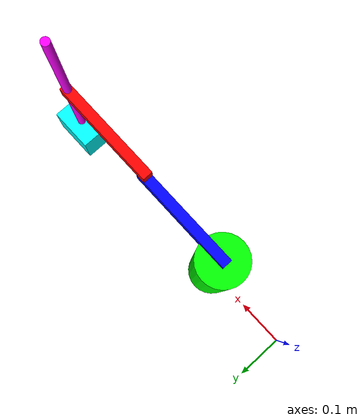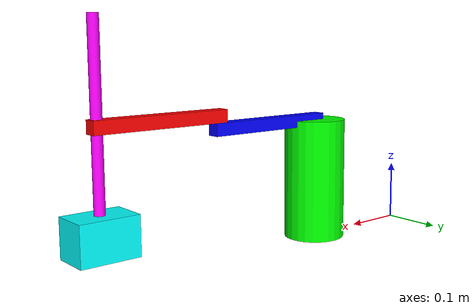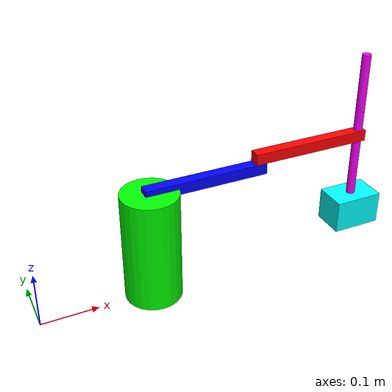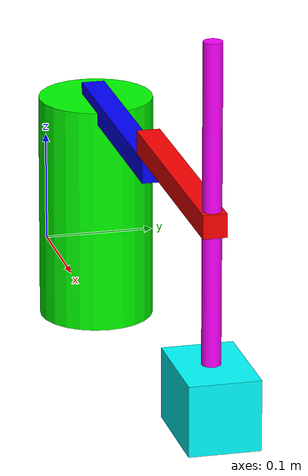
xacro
<?xml version="1.0"?>

<robot name="double_pendulum_ext" xmlns:xacro="http://www.ros.org/wiki/xacro">
    <xacro:include filename="double_pendulum_ext_params.xacro"/>

    <!-- Eslabon tipo "barra" - va desde su origen hasta +X una distancia "length" -->
    <xacro:macro name="link_box" params="name length color_name color_rgba">
        <link name="${name}">
            <visual>
                <origin xyz="${length/2} 0 0"/>
                <geometry>
                    <box size="${length+0.02} ${link_width} ${link_height}"/>
                </geometry>
                <material name="${color_name}">
                    <color rgba="${color_rgba}"/>
                </material>
            </visual>
            <collision>
                <origin xyz="${length/2} 0 0"/>
                <geometry>
                    <box size="${length} ${link_width} ${link_height}"/>
                </geometry>
            </collision>
        </link>
    </xacro:macro>

    <!-- World link -->
    <link name="world"/>

    <!-- Link base (fijo) -->
    <link name="base_link">
        <visual>
            <origin xyz="0 0 ${base_length/2}"/>
            <geometry>
                <cylinder radius="${base_radius}" length="${base_length}"/>
            </geometry>
            <material name="green">
                <color rgba="0 1 0 1"/>
            </material>
        </visual>
        <collision>
            <origin xyz="0 0 ${base_length/2}"/>
            <geometry>
                <cylinder radius="${base_radius}" length="${base_length}"/>
            </geometry>
        </collision>
    </link>

    <!-- Eslabones del péndulo doble original -->
    <xacro:link_box name="link1" length="${L1}" color_name="blue" color_rgba="0 0 1 1"/>
    <xacro:link_box name="link2" length="${L2}" color_name="red" color_rgba="1 0 0 1"/>

    <!-- Poste cilíndrico de la junta prismática -->
    <link name="link3">
        <visual>
            <geometry>
                <cylinder radius="${link3_radius}" length="${L3}"/>
            </geometry>
            <material name="magenta">
                <color rgba="1 0 1 1"/>
            </material>
        </visual>
        <collision>
            <geometry>
                <cylinder radius="${link3_radius}" length="${L3}"/>
            </geometry>
        </collision>
    </link>

    <!-- Bloque casi cúbico de la junta rotacional adicional -->
    <link name="link4">
        <visual>
            <geometry>
                <box size="${link4_length} ${link4_width} ${link4_width}"/>
            </geometry>
            <material name="cyan">
                <color rgba="0 1 1 1"/>
            </material>
        </visual>
        <collision>
            <geometry>
                <box size="${link4_length} ${link4_width} ${link4_width}"/>
            </geometry>
        </collision>
    </link>

    <!-- Herramienta -->
    <link name="tool0"/>

    <!--******************* DEFINICIONES DE JUNTAS  *******************-->

    <!-- Junta fija entre world y base_link -->
    <joint name="fixed" type="fixed">
        <parent link="world"/>
        <child link="base_link"/>
        <origin xyz="0.2 0 0" rpy="0 0 0"/>
    </joint>

    <!-- Junta entre base y link1 -->
    <joint name="joint1" type="revolute">
        <parent link="base_link"/>
        <child link="link1"/>
        <origin xyz="0 0 ${base_length}"/>
        <axis xyz="0 0 1"/>
        <limit effort="${revolute_effort}" lower="${revolute_lower}" upper="${revolute_upper}" velocity="${revolute_velocity}"/>
    </joint>

    <!-- Junta entre link1 y link2 -->
    <joint name="joint2" type="revolute">
        <parent link="link1"/>
        <child link="link2"/>
        <origin xyz="${L1} 0 ${link_height}"/>
        <axis xyz="0 0 1"/>
        <limit effort="${revolute_effort}" lower="${revolute_lower}" upper="${revolute_upper}" velocity="${revolute_velocity}"/>
    </joint>

    <!-- (a) Junta prismática nueva - sube y baja en Z, sobre la punta de link2 -->
    <joint name="joint3" type="prismatic">
        <parent link="link2"/>
        <child link="link3"/>
        <origin xyz="${L2} 0 0"/>
        <axis xyz="0 0 1"/>
        <limit effort="${prismatic_effort}" lower="${prismatic_lower}" upper="${prismatic_upper}" velocity="${prismatic_velocity}"/>
    </joint>

    <!-- (b) Junta rotacional adicional - rota en Z, el mismo eje sobre el que sube y baja link3 -->
    <joint name="joint4" type="revolute">
        <parent link="link3"/>
        <child link="link4"/>
        <origin xyz="0 0 -${L3/2}"/>
        <axis xyz="0 0 1"/>
        <limit effort="${revolute_effort}" lower="${revolute_lower}" upper="${revolute_upper}" velocity="${revolute_velocity}"/>
    </joint>

    <!-- Herramienta al final de link4 -->
    <joint name="tool0_fixed" type="fixed">
        <parent link="link4"/>
        <child link="tool0"/>
        <origin xyz="${link4_length/2} 0 0" rpy="0 0 0"/>
    </joint>

</robot>

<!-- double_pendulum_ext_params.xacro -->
<robot xmlns:xacro="http://www.ros.org/wiki/xacro">

    <!-- Longitudes de los eslabones -->
    <xacro:property name="L1" value="0.2"/>
    <xacro:property name="L2" value="0.2"/>
    <xacro:property name="L4" value="0.1"/>

    <!-- Espesores comunes a los eslabones tipo "barra" -->
    <xacro:property name="link_width" value="0.02"/>
    <xacro:property name="link_height" value="0.02"/>

    <!-- Poste cilíndrico de la junta prismática (algo más largo que L2) -->
    <xacro:property name="L3" value="0.3"/>
    <xacro:property name="link3_radius" value="0.008"/>

    <!-- Largo de la base (cilindro verde), igual al de la roja -->
    <xacro:property name="base_length" value="0.2"/>
    <xacro:property name="base_radius" value="0.05"/>

    <!-- Bloque casi cúbico de la junta rotacional adicional, alargado para ver la rotación -->
    <xacro:property name="link4_length" value="0.09"/>
    <xacro:property name="link4_width" value="0.06"/>

    <!-- Límites de la junta prismática (sube y baja en Z desde el punto de montaje) -->
    <xacro:property name="prismatic_lower" value="-0.075"/>
    <xacro:property name="prismatic_upper" value="0.075"/>
    <xacro:property name="prismatic_effort" value="500"/>
    <xacro:property name="prismatic_velocity" value="0.2"/>

    <!-- Límites comunes a las juntas rotacionales -->
    <xacro:property name="revolute_lower" value="-3.14"/>
    <xacro:property name="revolute_upper" value="3.14"/>
    <xacro:property name="revolute_effort" value="1000"/>
    <xacro:property name="revolute_velocity" value="5"/>

</robot>
